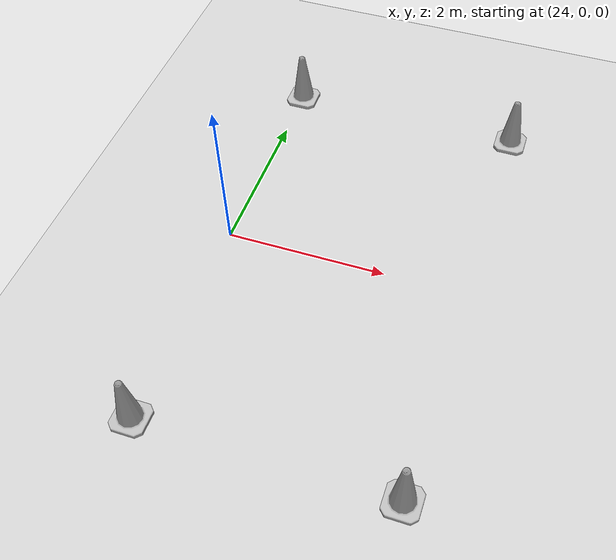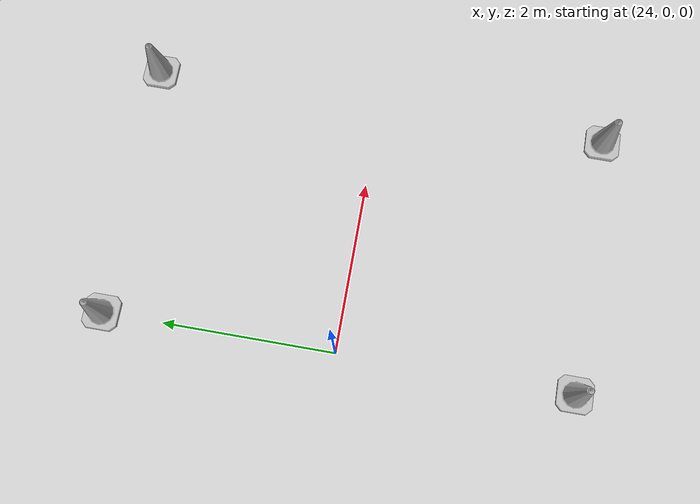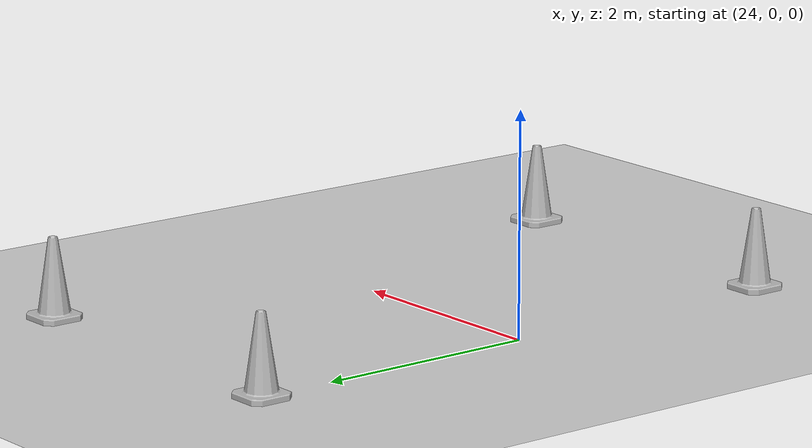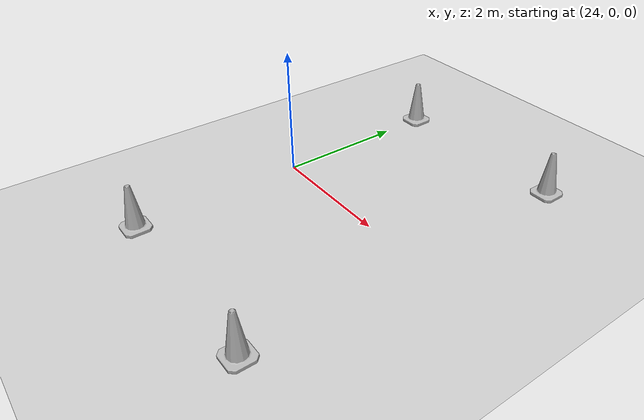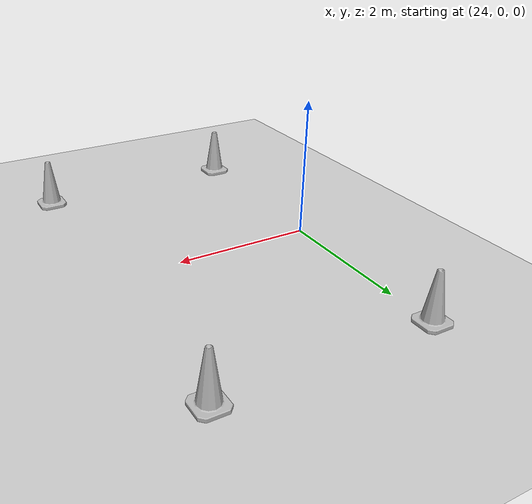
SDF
<sdf version="1.7">
 <world name="default">
  <model name="ground_plane">
   <static>1</static>
   <link name="link">
    <collision name="collision">
     <geometry><plane><normal>0 0 1</normal><size>100 100</size></plane></geometry>
     <surface>
      <contact><collide_bitmask>65535</collide_bitmask></contact>
      <friction><ode><mu>100</mu><mu2>50</mu2></ode></friction>
     </surface>
    </collision>
    <visual name="visual">
     <cast_shadows>0</cast_shadows>
     <geometry><plane><normal>0 0 1</normal><size>100 100</size></plane></geometry>
     <material>
      <script><uri>file://media/materials/scripts/gazebo.material</uri><name>Gazebo/Grey</name></script>
     </material>
    </visual>
   </link>
  </model>
  <model name="Construction_Cone_b_8">
   <link name="link">
    <inertial>
     <inertia><ixx>1</ixx><ixy>0</ixy><ixz>0</ixz><iyy>1</iyy><iyz>0</iyz><izz>1</izz></inertia>
     <mass>1</mass>
    </inertial>
    <visual name="visual">
     <geometry>
      <mesh><scale>8 8 6.7</scale><uri>./construction_cone/meshes/construction_cone_b.dae</uri></mesh>
     </geometry>
     <material><shader type="pixel"/></material>
    </visual>
    <collision name="collision">
     <geometry>
      <mesh><uri>./construction_cone/meshes/construction_cone_b.dae</uri><scale>8 8 6.7</scale></mesh>
     </geometry>
     <surface>
      <friction>
       <ode><mu>1</mu><mu2>1</mu2><fdir1>0 0 0</fdir1><slip1>0</slip1><slip2>0</slip2></ode>
       <torsional>
        <coefficient>1</coefficient>
        <patch_radius>0</patch_radius>
        <surface_radius>0</surface_radius>
        <use_patch_radius>1</use_patch_radius>
        <ode><slip>0</slip></ode>
       </torsional>
      </friction>
      <bounce><restitution_coefficient>0</restitution_coefficient><threshold>1e+06</threshold></bounce>
      <contact>
       <collide_without_contact>0</collide_without_contact>
       <collide_without_contact_bitmask>1</collide_without_contact_bitmask>
       <collide_bitmask>1</collide_bitmask>
       <ode>
        <soft_cfm>0</soft_cfm>
        <soft_erp>0.2</soft_erp>
        <kp>1e+13</kp>
        <kd>1</kd>
        <max_vel>0.01</max_vel>
        <min_depth>0</min_depth>
       </ode>
       <bullet>
        <split_impulse>1</split_impulse>
        <split_impulse_penetration_threshold>-0.01</split_impulse_penetration_threshold>
        <soft_cfm>0</soft_cfm>
        <soft_erp>0.2</soft_erp>
        <kp>1e+13</kp>
        <kd>1</kd>
       </bullet>
      </contact>
     </surface>
    </collision>
   </link>
   <static>0</static>
   <pose>24.0002 -2.70148 0 -0 -0 -0</pose>
  </model>
  <model name="Construction_Cone_b_10">
   <link name="link">
    <inertial>
     <inertia><ixx>1</ixx><ixy>0</ixy><ixz>0</ixz><iyy>1</iyy><iyz>0</iyz><izz>1</izz></inertia>
     <mass>1</mass>
    </inertial>
    <visual name="visual">
     <geometry>
      <mesh><scale>8 8 6.7</scale><uri>./construction_cone/meshes/construction_cone_b.dae</uri></mesh>
     </geometry>
     <material><shader type="pixel"/></material>
    </visual>
    <collision name="collision">
     <geometry>
      <mesh><uri>./construction_cone/meshes/construction_cone_b.dae</uri><scale>8 8 6.7</scale></mesh>
     </geometry>
     <surface>
      <friction>
       <ode><mu>1</mu><mu2>1</mu2><fdir1>0 0 0</fdir1><slip1>0</slip1><slip2>0</slip2></ode>
       <torsional>
        <coefficient>1</coefficient>
        <patch_radius>0</patch_radius>
        <surface_radius>0</surface_radius>
        <use_patch_radius>1</use_patch_radius>
        <ode><slip>0</slip></ode>
       </torsional>
      </friction>
      <bounce><restitution_coefficient>0</restitution_coefficient><threshold>1e+06</threshold></bounce>
      <contact>
       <collide_without_contact>0</collide_without_contact>
       <collide_without_contact_bitmask>1</collide_without_contact_bitmask>
       <collide_bitmask>1</collide_bitmask>
       <ode>
        <soft_cfm>0</soft_cfm>
        <soft_erp>0.2</soft_erp>
        <kp>1e+13</kp>
        <kd>1</kd>
        <max_vel>0.01</max_vel>
        <min_depth>0</min_depth>
       </ode>
       <bullet>
        <split_impulse>1</split_impulse>
        <split_impulse_penetration_threshold>-0.01</split_impulse_penetration_threshold>
        <soft_cfm>0</soft_cfm>
        <soft_erp>0.2</soft_erp>
        <kp>1e+13</kp>
        <kd>1</kd>
       </bullet>
      </contact>
     </surface>
    </collision>
   </link>
   <static>0</static>
   <pose>26.9993 -2.70087 -0 1e-06 -0 0</pose>
  </model>
  <model name="Construction_Cone_y_7">
   <link name="link">
    <inertial>
     <inertia><ixx>1</ixx><ixy>0</ixy><ixz>0</ixz><iyy>1</iyy><iyz>0</iyz><izz>1</izz></inertia>
     <mass>1</mass>
    </inertial>
    <visual name="visual">
     <geometry>
      <mesh><scale>8 8 6.7</scale><uri>./construction_cone/meshes/construction_cone_y.dae</uri></mesh>
     </geometry>
     <material><shader type="pixel"/></material>
    </visual>
    <collision name="collision">
     <geometry>
      <mesh><uri>./construction_cone/meshes/construction_cone_y.dae</uri><scale>8 8 6.7</scale></mesh>
     </geometry>
     <surface>
      <friction>
       <ode><mu>1</mu><mu2>1</mu2><fdir1>0 0 0</fdir1><slip1>0</slip1><slip2>0</slip2></ode>
       <torsional>
        <coefficient>1</coefficient>
        <patch_radius>0</patch_radius>
        <surface_radius>0</surface_radius>
        <use_patch_radius>1</use_patch_radius>
        <ode><slip>0</slip></ode>
       </torsional>
      </friction>
      <bounce><restitution_coefficient>0</restitution_coefficient><threshold>1e+06</threshold></bounce>
      <contact>
       <collide_without_contact>0</collide_without_contact>
       <collide_without_contact_bitmask>1</collide_without_contact_bitmask>
       <collide_bitmask>1</collide_bitmask>
       <ode>
        <soft_cfm>0</soft_cfm>
        <soft_erp>0.2</soft_erp>
        <kp>1e+13</kp>
        <kd>1</kd>
        <max_vel>0.01</max_vel>
        <min_depth>0</min_depth>
       </ode>
       <bullet>
        <split_impulse>1</split_impulse>
        <split_impulse_penetration_threshold>-0.01</split_impulse_penetration_threshold>
        <soft_cfm>0</soft_cfm>
        <soft_erp>0.2</soft_erp>
        <kp>1e+13</kp>
        <kd>1</kd>
       </bullet>
      </contact>
     </surface>
    </collision>
   </link>
   <static>0</static>
   <pose>23.9984 2.70135 -0 0 -0 0</pose>
  </model>
  <model name="Construction_Cone_y_8">
   <link name="link">
    <inertial>
     <inertia><ixx>1</ixx><ixy>0</ixy><ixz>0</ixz><iyy>1</iyy><iyz>0</iyz><izz>1</izz></inertia>
     <mass>1</mass>
    </inertial>
    <visual name="visual">
     <geometry>
      <mesh><scale>8 8 6.7</scale><uri>./construction_cone/meshes/construction_cone_y.dae</uri></mesh>
     </geometry>
     <material><shader type="pixel"/></material>
    </visual>
    <collision name="collision">
     <geometry>
      <mesh><uri>./construction_cone/meshes/construction_cone_y.dae</uri><scale>8 8 6.7</scale></mesh>
     </geometry>
     <surface>
      <friction>
       <ode><mu>1</mu><mu2>1</mu2><fdir1>0 0 0</fdir1><slip1>0</slip1><slip2>0</slip2></ode>
       <torsional>
        <coefficient>1</coefficient>
        <patch_radius>0</patch_radius>
        <surface_radius>0</surface_radius>
        <use_patch_radius>1</use_patch_radius>
        <ode><slip>0</slip></ode>
       </torsional>
      </friction>
      <bounce><restitution_coefficient>0</restitution_coefficient><threshold>1e+06</threshold></bounce>
      <contact>
       <collide_without_contact>0</collide_without_contact>
       <collide_without_contact_bitmask>1</collide_without_contact_bitmask>
       <collide_bitmask>1</collide_bitmask>
       <ode>
        <soft_cfm>0</soft_cfm>
        <soft_erp>0.2</soft_erp>
        <kp>1e+13</kp>
        <kd>1</kd>
        <max_vel>0.01</max_vel>
        <min_depth>0</min_depth>
       </ode>
       <bullet>
        <split_impulse>1</split_impulse>
        <split_impulse_penetration_threshold>-0.01</split_impulse_penetration_threshold>
        <soft_cfm>0</soft_cfm>
        <soft_erp>0.2</soft_erp>
        <kp>1e+13</kp>
        <kd>1</kd>
       </bullet>
      </contact>
     </surface>
    </collision>
   </link>
   <static>0</static>
   <pose>27 2.70316 -0 0 -0 0</pose>
  </model>
 </world>
</sdf>
